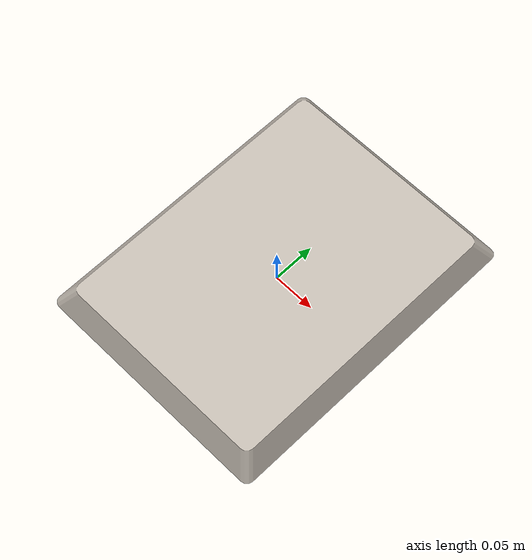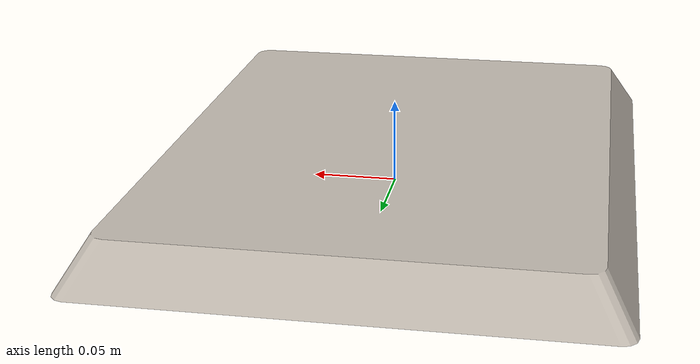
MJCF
<?xml version="1.0" encoding="utf-8"?>
<mujoco model="board">
  <compiler angle="radian" meshdir="assets" texturedir="assets" autolimits="true"/>
  <asset>
    <mesh file="board.obj"/>
    <texture type="2d" name="board" file="board_basecolor.png"/>
    <material name="board" specular="0.2" shininess="0.2" texture="board"/>
  </asset>
  <default>
    <default class="board">
      <default class="visual">
        <geom type="mesh" mass="1" contype="0" conaffinity="0" group="2"/>
      </default>
      <default class="collision">
        <geom type="mesh" mass="0" group="3" solimp="0.95 0.98 0.001" solref="0.004 1"/>
      </default>
    </default>
  </default>
  <worldbody>
    <body name="board" childclass="board">
      <geom name="mesh" mesh="board" class="visual" material="board" euler="1.5708 0 0"/>
      <geom name="collider_1" type="box" size="0.142 0.182 0.0075" pos="0 0 0.0075" class="collision"/>
      <geom name="collider_2" type="box" size="0.128 0.165 0.0075" pos="0 0 0.0225" class="collision"/>
    </body>
  </worldbody>
</mujoco>
